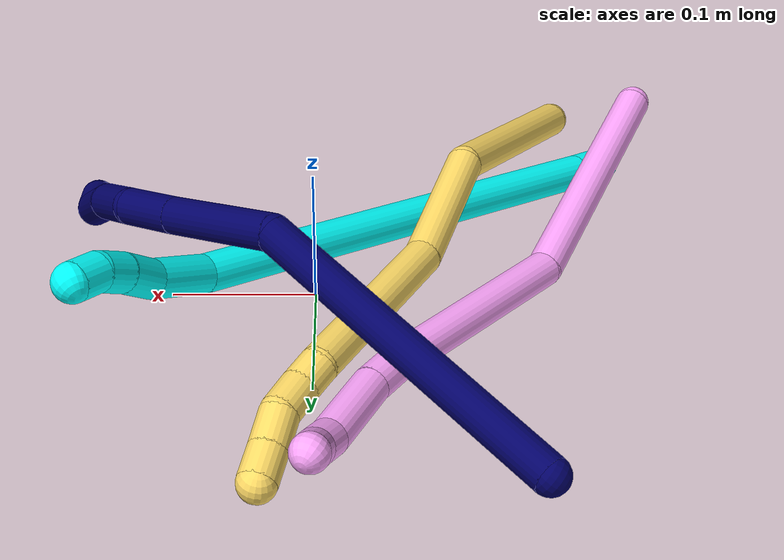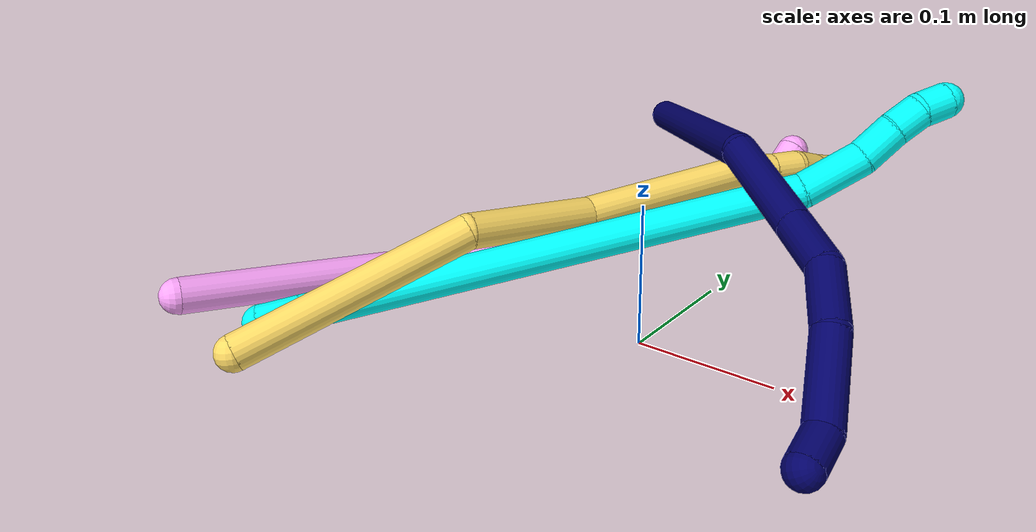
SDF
<sdf version="1.7">
 <world name="default">
  <model name="3">
   <static>0</static>
   <link name="3">
    <collision name="collision-cylinder-e_1_1_4">
     <pose>0.011645 0.00959 0.001448 -1.42089 0.876336 -0.766334</pose>
     <geometry><cylinder><radius>0.0125</radius><length>0.030309</length></cylinder></geometry>
     <surface>
      <friction><ode><mu>1.16</mu><mu2>1.16</mu2><slip1>0</slip1><slip2>0</slip2></ode></friction>
      <contact><ode><kp>1e+06</kp><kd>1</kd><max_vel>0</max_vel><min_depth>0.001</min_depth></ode></contact>
     </surface>
    </collision>
    <visual name="visual-cylinder-e_1_1_4">
     <pose>0.011645 0.00959 0.001448 -1.42089 0.876336 -0.766334</pose>
     <geometry><cylinder><radius>0.0125</radius><length>0.030309</length></cylinder></geometry>
     <material><ambient>0.003922 1 0.996078 1</ambient></material>
    </visual>
    <collision name="collision-cylinder-e_2_4_5">
     <pose>0.158544 0.130022 0.016573 -1.44804 0.880561 -0.789415</pose>
     <geometry><cylinder><radius>0.0125</radius><length>0.35081</length></cylinder></geometry>
     <surface>
      <friction><ode><mu>1.16</mu><mu2>1.16</mu2><slip1>0</slip1><slip2>0</slip2></ode></friction>
      <contact><ode><kp>1e+06</kp><kd>1</kd><max_vel>0</max_vel><min_depth>0.001</min_depth></ode></contact>
     </surface>
    </collision>
    <visual name="visual-cylinder-e_2_4_5">
     <pose>0.158544 0.130022 0.016573 -1.44804 0.880561 -0.789415</pose>
     <geometry><cylinder><radius>0.0125</radius><length>0.35081</length></cylinder></geometry>
     <material><ambient>0.003922 1 0.996078 1</ambient></material>
    </visual>
    <collision name="collision-cylinder-e_3_5_6">
     <pose>0.3152 0.250438 0.032529 -1.33688 1.13986 -0.937035</pose>
     <geometry><cylinder><radius>0.0125</radius><length>0.047113</length></cylinder></geometry>
     <surface>
      <friction><ode><mu>1.16</mu><mu2>1.16</mu2><slip1>0</slip1><slip2>0</slip2></ode></friction>
      <contact><ode><kp>1e+06</kp><kd>1</kd><max_vel>0</max_vel><min_depth>0.001</min_depth></ode></contact>
     </surface>
    </collision>
    <visual name="visual-cylinder-e_3_5_6">
     <pose>0.3152 0.250438 0.032529 -1.33688 1.13986 -0.937035</pose>
     <geometry><cylinder><radius>0.0125</radius><length>0.047113</length></cylinder></geometry>
     <material><ambient>0.003922 1 0.996078 1</ambient></material>
    </visual>
    <collision name="collision-cylinder-e_4_6_7">
     <pose>0.350658 0.262679 0.035259 -1.40438 1.38051 -1.21961</pose>
     <geometry><cylinder><radius>0.0125</radius><length>0.028625</length></cylinder></geometry>
     <surface>
      <friction><ode><mu>1.16</mu><mu2>1.16</mu2><slip1>0</slip1><slip2>0</slip2></ode></friction>
      <contact><ode><kp>1e+06</kp><kd>1</kd><max_vel>0</max_vel><min_depth>0.001</min_depth></ode></contact>
     </surface>
    </collision>
    <visual name="visual-cylinder-e_4_6_7">
     <pose>0.350658 0.262679 0.035259 -1.40438 1.38051 -1.21961</pose>
     <geometry><cylinder><radius>0.0125</radius><length>0.028625</length></cylinder></geometry>
     <material><ambient>0.003922 1 0.996078 1</ambient></material>
    </visual>
    <collision name="collision-cylinder-e_5_7_8">
     <pose>0.375276 0.268495 0.036685 -1.26947 1.26848 -0.992909</pose>
     <geometry><cylinder><radius>0.0125</radius><length>0.022131</length></cylinder></geometry>
     <surface>
      <friction><ode><mu>1.16</mu><mu2>1.16</mu2><slip1>0</slip1><slip2>0</slip2></ode></friction>
      <contact><ode><kp>1e+06</kp><kd>1</kd><max_vel>0</max_vel><min_depth>0.001</min_depth></ode></contact>
     </surface>
    </collision>
    <visual name="visual-cylinder-e_5_7_8">
     <pose>0.375276 0.268495 0.036685 -1.26947 1.26848 -0.992909</pose>
     <geometry><cylinder><radius>0.0125</radius><length>0.022131</length></cylinder></geometry>
     <material><ambient>0.003922 1 0.996078 1</ambient></material>
    </visual>
    <collision name="collision-cylinder-e_6_8_2">
     <pose>0.394402 0.276995 0.04056 -1.07482 0.952763 -0.596652</pose>
     <geometry><cylinder><radius>0.0125</radius><length>0.021011</length></cylinder></geometry>
     <surface>
      <friction><ode><mu>1.16</mu><mu2>1.16</mu2><slip1>0</slip1><slip2>0</slip2></ode></friction>
      <contact><ode><kp>1e+06</kp><kd>1</kd><max_vel>0</max_vel><min_depth>0.001</min_depth></ode></contact>
     </surface>
    </collision>
    <visual name="visual-cylinder-e_6_8_2">
     <pose>0.394402 0.276995 0.04056 -1.07482 0.952763 -0.596652</pose>
     <geometry><cylinder><radius>0.0125</radius><length>0.021011</length></cylinder></geometry>
     <material><ambient>0.003922 1 0.996078 1</ambient></material>
    </visual>
    <collision name="collision-sphere-2">
     <pose>0.402964 0.282349 0.043457 0 -0 0</pose>
     <geometry><sphere><radius>0.0125</radius></sphere></geometry>
     <surface>
      <friction><ode><mu>1.16</mu><mu2>1.16</mu2><slip1>0</slip1><slip2>0</slip2></ode></friction>
      <contact><ode><kp>1e+06</kp><kd>1</kd><max_vel>0</max_vel><min_depth>0.001</min_depth></ode></contact>
     </surface>
    </collision>
    <visual name="visual-sphere-2">
     <pose>0.402964 0.282349 0.043457 0 -0 0</pose>
     <geometry><sphere><radius>0.0125</radius></sphere></geometry>
     <material><ambient>0.003922 1 0.996078 1</ambient></material>
    </visual>
    <collision name="collision-sphere-4">
     <pose>0.023289 0.019179 0.002897 0 -0 0</pose>
     <geometry><sphere><radius>0.0125</radius></sphere></geometry>
     <surface>
      <friction><ode><mu>1.16</mu><mu2>1.16</mu2><slip1>0</slip1><slip2>0</slip2></ode></friction>
      <contact><ode><kp>1e+06</kp><kd>1</kd><max_vel>0</max_vel><min_depth>0.001</min_depth></ode></contact>
     </surface>
    </collision>
    <visual name="visual-sphere-4">
     <pose>0.023289 0.019179 0.002897 0 -0 0</pose>
     <geometry><sphere><radius>0.0125</radius></sphere></geometry>
     <material><ambient>0.003922 1 0.996078 1</ambient></material>
    </visual>
    <collision name="collision-sphere-1">
     <geometry><sphere><radius>0.0125</radius></sphere></geometry>
     <surface>
      <friction><ode><mu>1.16</mu><mu2>1.16</mu2><slip1>0</slip1><slip2>0</slip2></ode></friction>
      <contact><ode><kp>1e+06</kp><kd>1</kd><max_vel>0</max_vel><min_depth>0.001</min_depth></ode></contact>
     </surface>
    </collision>
    <visual name="visual-sphere-1">
     <geometry><sphere><radius>0.0125</radius></sphere></geometry>
     <material><ambient>0.003922 1 0.996078 1</ambient></material>
    </visual>
    <collision name="collision-sphere-8">
     <pose>0.38584 0.271642 0.037663 0 -0 0</pose>
     <geometry><sphere><radius>0.0125</radius></sphere></geometry>
     <surface>
      <friction><ode><mu>1.16</mu><mu2>1.16</mu2><slip1>0</slip1><slip2>0</slip2></ode></friction>
      <contact><ode><kp>1e+06</kp><kd>1</kd><max_vel>0</max_vel><min_depth>0.001</min_depth></ode></contact>
     </surface>
    </collision>
    <visual name="visual-sphere-8">
     <pose>0.38584 0.271642 0.037663 0 -0 0</pose>
     <geometry><sphere><radius>0.0125</radius></sphere></geometry>
     <material><ambient>0.003922 1 0.996078 1</ambient></material>
    </visual>
    <collision name="collision-sphere-5">
     <pose>0.293798 0.240866 0.030248 0 -0 0</pose>
     <geometry><sphere><radius>0.0125</radius></sphere></geometry>
     <surface>
      <friction><ode><mu>1.16</mu><mu2>1.16</mu2><slip1>0</slip1><slip2>0</slip2></ode></friction>
      <contact><ode><kp>1e+06</kp><kd>1</kd><max_vel>0</max_vel><min_depth>0.001</min_depth></ode></contact>
     </surface>
    </collision>
    <visual name="visual-sphere-5">
     <pose>0.293798 0.240866 0.030248 0 -0 0</pose>
     <geometry><sphere><radius>0.0125</radius></sphere></geometry>
     <material><ambient>0.003922 1 0.996078 1</ambient></material>
    </visual>
    <collision name="collision-sphere-6">
     <pose>0.336603 0.26001 0.03481 0 -0 0</pose>
     <geometry><sphere><radius>0.0125</radius></sphere></geometry>
     <surface>
      <friction><ode><mu>1.16</mu><mu2>1.16</mu2><slip1>0</slip1><slip2>0</slip2></ode></friction>
      <contact><ode><kp>1e+06</kp><kd>1</kd><max_vel>0</max_vel><min_depth>0.001</min_depth></ode></contact>
     </surface>
    </collision>
    <visual name="visual-sphere-6">
     <pose>0.336603 0.26001 0.03481 0 -0 0</pose>
     <geometry><sphere><radius>0.0125</radius></sphere></geometry>
     <material><ambient>0.003922 1 0.996078 1</ambient></material>
    </visual>
    <collision name="collision-sphere-7">
     <pose>0.364712 0.265349 0.035707 0 -0 0</pose>
     <geometry><sphere><radius>0.0125</radius></sphere></geometry>
     <surface>
      <friction><ode><mu>1.16</mu><mu2>1.16</mu2><slip1>0</slip1><slip2>0</slip2></ode></friction>
      <contact><ode><kp>1e+06</kp><kd>1</kd><max_vel>0</max_vel><min_depth>0.001</min_depth></ode></contact>
     </surface>
    </collision>
    <visual name="visual-sphere-7">
     <pose>0.364712 0.265349 0.035707 0 -0 0</pose>
     <geometry><sphere><radius>0.0125</radius></sphere></geometry>
     <material><ambient>0.003922 1 0.996078 1</ambient></material>
    </visual>
    <inertial>
     <pose>0.194903 0.153968 0.020127 0 -0 0</pose>
     <mass>0.5</mass>
     <inertia>
      <ixx>1.7e-05</ixx>
      <ixy>0</ixy>
      <ixz>0</ixz>
      <iyy>0.000674</iyy>
      <iyz>0</iyz>
      <izz>-0.00509</izz>
     </inertia>
    </inertial>
   </link>
   <pose>-0.214043 -0.146354 0.011493 -2.15163 -0.86842 1.01089</pose>
  </model>
  <model name="4">
   <static>0</static>
   <link name="4">
    <collision name="collision-cylinder-e_1_1_4">
     <pose>0.000107 -5.3e-05 0.101879 0.000516 0.001049 0</pose>
     <geometry><cylinder><radius>0.0125</radius><length>0.203758</length></cylinder></geometry>
     <surface>
      <friction><ode><mu>1.16</mu><mu2>1.16</mu2><slip1>0</slip1><slip2>0</slip2></ode></friction>
      <contact><ode><kp>1e+06</kp><kd>1</kd><max_vel>0</max_vel><min_depth>0.001</min_depth></ode></contact>
     </surface>
    </collision>
    <visual name="visual-cylinder-e_1_1_4">
     <pose>0.000107 -5.3e-05 0.101879 0.000516 0.001049 0</pose>
     <geometry><cylinder><radius>0.0125</radius><length>0.203758</length></cylinder></geometry>
     <material><ambient>1 0.65098 0.996078 1</ambient></material>
    </visual>
    <collision name="collision-cylinder-e_2_4_5">
     <pose>-0.025573 0.011509 0.279934 -0.151299 -0.322929 0.02469</pose>
     <geometry><cylinder><radius>0.0125</radius><length>0.162515</length></cylinder></geometry>
     <surface>
      <friction><ode><mu>1.16</mu><mu2>1.16</mu2><slip1>0</slip1><slip2>0</slip2></ode></friction>
      <contact><ode><kp>1e+06</kp><kd>1</kd><max_vel>0</max_vel><min_depth>0.001</min_depth></ode></contact>
     </surface>
    </collision>
    <visual name="visual-cylinder-e_2_4_5">
     <pose>-0.025573 0.011509 0.279934 -0.151299 -0.322929 0.02469</pose>
     <geometry><cylinder><radius>0.0125</radius><length>0.162515</length></cylinder></geometry>
     <material><ambient>1 0.65098 0.996078 1</ambient></material>
    </visual>
    <collision name="collision-cylinder-e_3_5_6">
     <pose>-0.054468 0.02584 0.371539 -0.174282 -0.195871 0.017166</pose>
     <geometry><cylinder><radius>0.0125</radius><length>0.031942</length></cylinder></geometry>
     <surface>
      <friction><ode><mu>1.16</mu><mu2>1.16</mu2><slip1>0</slip1><slip2>0</slip2></ode></friction>
      <contact><ode><kp>1e+06</kp><kd>1</kd><max_vel>0</max_vel><min_depth>0.001</min_depth></ode></contact>
     </surface>
    </collision>
    <visual name="visual-cylinder-e_3_5_6">
     <pose>-0.054468 0.02584 0.371539 -0.174282 -0.195871 0.017166</pose>
     <geometry><cylinder><radius>0.0125</radius><length>0.031942</length></cylinder></geometry>
     <material><ambient>1 0.65098 0.996078 1</ambient></material>
    </visual>
    <collision name="collision-cylinder-e_4_6_7">
     <pose>-0.059524 0.034026 0.415941 -0.186589 -0.06597 0.006175</pose>
     <geometry><cylinder><radius>0.0125</radius><length>0.059099</length></cylinder></geometry>
     <surface>
      <friction><ode><mu>1.16</mu><mu2>1.16</mu2><slip1>0</slip1><slip2>0</slip2></ode></friction>
      <contact><ode><kp>1e+06</kp><kd>1</kd><max_vel>0</max_vel><min_depth>0.001</min_depth></ode></contact>
     </surface>
    </collision>
    <visual name="visual-cylinder-e_4_6_7">
     <pose>-0.059524 0.034026 0.415941 -0.186589 -0.06597 0.006175</pose>
     <geometry><cylinder><radius>0.0125</radius><length>0.059099</length></cylinder></geometry>
     <material><ambient>1 0.65098 0.996078 1</ambient></material>
    </visual>
    <collision name="collision-cylinder-e_5_7_8">
     <pose>-0.062624 0.044574 0.454369 -0.492894 -0.106948 0.026928</pose>
     <geometry><cylinder><radius>0.0125</radius><length>0.021586</length></cylinder></geometry>
     <surface>
      <friction><ode><mu>1.16</mu><mu2>1.16</mu2><slip1>0</slip1><slip2>0</slip2></ode></friction>
      <contact><ode><kp>1e+06</kp><kd>1</kd><max_vel>0</max_vel><min_depth>0.001</min_depth></ode></contact>
     </surface>
    </collision>
    <visual name="visual-cylinder-e_5_7_8">
     <pose>-0.062624 0.044574 0.454369 -0.492894 -0.106948 0.026928</pose>
     <geometry><cylinder><radius>0.0125</radius><length>0.021586</length></cylinder></geometry>
     <material><ambient>1 0.65098 0.996078 1</ambient></material>
    </visual>
    <collision name="collision-cylinder-e_6_8_2">
     <pose>-0.063136 0.057011 0.471355 -0.773775 0.060735 -0.024751</pose>
     <geometry><cylinder><radius>0.0125</radius><length>0.021101</length></cylinder></geometry>
     <surface>
      <friction><ode><mu>1.16</mu><mu2>1.16</mu2><slip1>0</slip1><slip2>0</slip2></ode></friction>
      <contact><ode><kp>1e+06</kp><kd>1</kd><max_vel>0</max_vel><min_depth>0.001</min_depth></ode></contact>
     </surface>
    </collision>
    <visual name="visual-cylinder-e_6_8_2">
     <pose>-0.063136 0.057011 0.471355 -0.773775 0.060735 -0.024751</pose>
     <geometry><cylinder><radius>0.0125</radius><length>0.021101</length></cylinder></geometry>
     <material><ambient>1 0.65098 0.996078 1</ambient></material>
    </visual>
    <collision name="collision-sphere-2">
     <pose>-0.062496 0.06437 0.478888 0 -0 0</pose>
     <geometry><sphere><radius>0.0125</radius></sphere></geometry>
     <surface>
      <friction><ode><mu>1.16</mu><mu2>1.16</mu2><slip1>0</slip1><slip2>0</slip2></ode></friction>
      <contact><ode><kp>1e+06</kp><kd>1</kd><max_vel>0</max_vel><min_depth>0.001</min_depth></ode></contact>
     </surface>
    </collision>
    <visual name="visual-sphere-2">
     <pose>-0.062496 0.06437 0.478888 0 -0 0</pose>
     <geometry><sphere><radius>0.0125</radius></sphere></geometry>
     <material><ambient>1 0.65098 0.996078 1</ambient></material>
    </visual>
    <collision name="collision-sphere-4">
     <pose>0.000214 -0.000105 0.203757 0 -0 0</pose>
     <geometry><sphere><radius>0.0125</radius></sphere></geometry>
     <surface>
      <friction><ode><mu>1.16</mu><mu2>1.16</mu2><slip1>0</slip1><slip2>0</slip2></ode></friction>
      <contact><ode><kp>1e+06</kp><kd>1</kd><max_vel>0</max_vel><min_depth>0.001</min_depth></ode></contact>
     </surface>
    </collision>
    <visual name="visual-sphere-4">
     <pose>0.000214 -0.000105 0.203757 0 -0 0</pose>
     <geometry><sphere><radius>0.0125</radius></sphere></geometry>
     <material><ambient>1 0.65098 0.996078 1</ambient></material>
    </visual>
    <collision name="collision-sphere-1">
     <geometry><sphere><radius>0.0125</radius></sphere></geometry>
     <surface>
      <friction><ode><mu>1.16</mu><mu2>1.16</mu2><slip1>0</slip1><slip2>0</slip2></ode></friction>
      <contact><ode><kp>1e+06</kp><kd>1</kd><max_vel>0</max_vel><min_depth>0.001</min_depth></ode></contact>
     </surface>
    </collision>
    <visual name="visual-sphere-1">
     <geometry><sphere><radius>0.0125</radius></sphere></geometry>
     <material><ambient>1 0.65098 0.996078 1</ambient></material>
    </visual>
    <collision name="collision-sphere-8">
     <pose>-0.063776 0.049651 0.463823 0 -0 0</pose>
     <geometry><sphere><radius>0.0125</radius></sphere></geometry>
     <surface>
      <friction><ode><mu>1.16</mu><mu2>1.16</mu2><slip1>0</slip1><slip2>0</slip2></ode></friction>
      <contact><ode><kp>1e+06</kp><kd>1</kd><max_vel>0</max_vel><min_depth>0.001</min_depth></ode></contact>
     </surface>
    </collision>
    <visual name="visual-sphere-8">
     <pose>-0.063776 0.049651 0.463823 0 -0 0</pose>
     <geometry><sphere><radius>0.0125</radius></sphere></geometry>
     <material><ambient>1 0.65098 0.996078 1</ambient></material>
    </visual>
    <collision name="collision-sphere-5">
     <pose>-0.05136 0.023123 0.356111 0 -0 0</pose>
     <geometry><sphere><radius>0.0125</radius></sphere></geometry>
     <surface>
      <friction><ode><mu>1.16</mu><mu2>1.16</mu2><slip1>0</slip1><slip2>0</slip2></ode></friction>
      <contact><ode><kp>1e+06</kp><kd>1</kd><max_vel>0</max_vel><min_depth>0.001</min_depth></ode></contact>
     </surface>
    </collision>
    <visual name="visual-sphere-5">
     <pose>-0.05136 0.023123 0.356111 0 -0 0</pose>
     <geometry><sphere><radius>0.0125</radius></sphere></geometry>
     <material><ambient>1 0.65098 0.996078 1</ambient></material>
    </visual>
    <collision name="collision-sphere-6">
     <pose>-0.057576 0.028556 0.386968 0 -0 0</pose>
     <geometry><sphere><radius>0.0125</radius></sphere></geometry>
     <surface>
      <friction><ode><mu>1.16</mu><mu2>1.16</mu2><slip1>0</slip1><slip2>0</slip2></ode></friction>
      <contact><ode><kp>1e+06</kp><kd>1</kd><max_vel>0</max_vel><min_depth>0.001</min_depth></ode></contact>
     </surface>
    </collision>
    <visual name="visual-sphere-6">
     <pose>-0.057576 0.028556 0.386968 0 -0 0</pose>
     <geometry><sphere><radius>0.0125</radius></sphere></geometry>
     <material><ambient>1 0.65098 0.996078 1</ambient></material>
    </visual>
    <collision name="collision-sphere-7">
     <pose>-0.061472 0.039496 0.444915 0 -0 0</pose>
     <geometry><sphere><radius>0.0125</radius></sphere></geometry>
     <surface>
      <friction><ode><mu>1.16</mu><mu2>1.16</mu2><slip1>0</slip1><slip2>0</slip2></ode></friction>
      <contact><ode><kp>1e+06</kp><kd>1</kd><max_vel>0</max_vel><min_depth>0.001</min_depth></ode></contact>
     </surface>
    </collision>
    <visual name="visual-sphere-7">
     <pose>-0.061472 0.039496 0.444915 0 -0 0</pose>
     <geometry><sphere><radius>0.0125</radius></sphere></geometry>
     <material><ambient>1 0.65098 0.996078 1</ambient></material>
    </visual>
    <inertial>
     <pose>-0.024152 0.013722 0.244911 0 -0 0</pose>
     <mass>0.5</mass>
     <inertia>
      <ixx>0.001088</ixx>
      <ixy>0</ixy>
      <ixz>0</ixz>
      <iyy>0.001113</iyy>
      <iyz>0</iyz>
      <izz>9.6e-05</izz>
     </inertia>
    </inertial>
   </link>
   <pose>-0.240749 -0.187995 0.040464 1.6669 0.254583 2.74761</pose>
  </model>
  <model name="5">
   <static>0</static>
   <link name="5">
    <collision name="collision-cylinder-e_1_1_4">
     <pose>0.036623 0.071599 0.024315 -1.24341 0.451042 -0.325845</pose>
     <geometry><cylinder><radius>0.0125</radius><length>0.168034</length></cylinder></geometry>
     <surface>
      <friction><ode><mu>1.16</mu><mu2>1.16</mu2><slip1>0</slip1><slip2>0</slip2></ode></friction>
      <contact><ode><kp>1e+06</kp><kd>1</kd><max_vel>0</max_vel><min_depth>0.001</min_depth></ode></contact>
     </surface>
    </collision>
    <visual name="visual-cylinder-e_1_1_4">
     <pose>0.036623 0.071599 0.024315 -1.24341 0.451042 -0.325845</pose>
     <geometry><cylinder><radius>0.0125</radius><length>0.168034</length></cylinder></geometry>
     <material><ambient>1 0.858824 0.4 1</ambient></material>
    </visual>
    <collision name="collision-cylinder-e_2_4_5">
     <pose>0.084888 0.191488 0.043478 -1.6771 0.235265 -0.261418</pose>
     <geometry><cylinder><radius>0.0125</radius><length>0.09988</length></cylinder></geometry>
     <surface>
      <friction><ode><mu>1.16</mu><mu2>1.16</mu2><slip1>0</slip1><slip2>0</slip2></ode></friction>
      <contact><ode><kp>1e+06</kp><kd>1</kd><max_vel>0</max_vel><min_depth>0.001</min_depth></ode></contact>
     </surface>
    </collision>
    <visual name="visual-cylinder-e_2_4_5">
     <pose>0.084888 0.191488 0.043478 -1.6771 0.235265 -0.261418</pose>
     <geometry><cylinder><radius>0.0125</radius><length>0.09988</length></cylinder></geometry>
     <material><ambient>1 0.858824 0.4 1</ambient></material>
    </visual>
    <collision name="collision-cylinder-e_3_5_6">
     <pose>0.125658 0.30341 0.042674 -1.50255 0.428418 -0.400912</pose>
     <geometry><cylinder><radius>0.0125</radius><length>0.140236</length></cylinder></geometry>
     <surface>
      <friction><ode><mu>1.16</mu><mu2>1.16</mu2><slip1>0</slip1><slip2>0</slip2></ode></friction>
      <contact><ode><kp>1e+06</kp><kd>1</kd><max_vel>0</max_vel><min_depth>0.001</min_depth></ode></contact>
     </surface>
    </collision>
    <visual name="visual-cylinder-e_3_5_6">
     <pose>0.125658 0.30341 0.042674 -1.50255 0.428418 -0.400912</pose>
     <geometry><cylinder><radius>0.0125</radius><length>0.140236</length></cylinder></geometry>
     <material><ambient>1 0.858824 0.4 1</ambient></material>
    </visual>
    <collision name="collision-cylinder-e_4_6_7">
     <pose>0.159384 0.375808 0.045198 -1.77619 0.474337 -0.577894</pose>
     <geometry><cylinder><radius>0.0125</radius><length>0.020129</length></cylinder></geometry>
     <surface>
      <friction><ode><mu>1.16</mu><mu2>1.16</mu2><slip1>0</slip1><slip2>0</slip2></ode></friction>
      <contact><ode><kp>1e+06</kp><kd>1</kd><max_vel>0</max_vel><min_depth>0.001</min_depth></ode></contact>
     </surface>
    </collision>
    <visual name="visual-cylinder-e_4_6_7">
     <pose>0.159384 0.375808 0.045198 -1.77619 0.474337 -0.577894</pose>
     <geometry><cylinder><radius>0.0125</radius><length>0.020129</length></cylinder></geometry>
     <material><ambient>1 0.858824 0.4 1</ambient></material>
    </visual>
    <collision name="collision-cylinder-e_5_7_8">
     <pose>0.168726 0.395805 0.04262 -1.63764 0.398876 -0.425672</pose>
     <geometry><cylinder><radius>0.0125</radius><length>0.024432</length></cylinder></geometry>
     <surface>
      <friction><ode><mu>1.16</mu><mu2>1.16</mu2><slip1>0</slip1><slip2>0</slip2></ode></friction>
      <contact><ode><kp>1e+06</kp><kd>1</kd><max_vel>0</max_vel><min_depth>0.001</min_depth></ode></contact>
     </surface>
    </collision>
    <visual name="visual-cylinder-e_5_7_8">
     <pose>0.168726 0.395805 0.04262 -1.63764 0.398876 -0.425672</pose>
     <geometry><cylinder><radius>0.0125</radius><length>0.024432</length></cylinder></geometry>
     <material><ambient>1 0.858824 0.4 1</ambient></material>
    </visual>
    <collision name="collision-cylinder-e_6_8_9">
     <pose>0.175095 0.418748 0.038152 -1.87804 0.131475 -0.179428</pose>
     <geometry><cylinder><radius>0.0125</radius><length>0.024787</length></cylinder></geometry>
     <surface>
      <friction><ode><mu>1.16</mu><mu2>1.16</mu2><slip1>0</slip1><slip2>0</slip2></ode></friction>
      <contact><ode><kp>1e+06</kp><kd>1</kd><max_vel>0</max_vel><min_depth>0.001</min_depth></ode></contact>
     </surface>
    </collision>
    <visual name="visual-cylinder-e_6_8_9">
     <pose>0.175095 0.418748 0.038152 -1.87804 0.131475 -0.179428</pose>
     <geometry><cylinder><radius>0.0125</radius><length>0.024787</length></cylinder></geometry>
     <material><ambient>1 0.858824 0.4 1</ambient></material>
    </visual>
    <collision name="collision-cylinder-e_7_9_2">
     <pose>0.178341 0.441228 0.031611 -1.8273 0.144636 -0.187242</pose>
     <geometry><cylinder><radius>0.0125</radius><length>0.022502</length></cylinder></geometry>
     <surface>
      <friction><ode><mu>1.16</mu><mu2>1.16</mu2><slip1>0</slip1><slip2>0</slip2></ode></friction>
      <contact><ode><kp>1e+06</kp><kd>1</kd><max_vel>0</max_vel><min_depth>0.001</min_depth></ode></contact>
     </surface>
    </collision>
    <visual name="visual-cylinder-e_7_9_2">
     <pose>0.178341 0.441228 0.031611 -1.8273 0.144636 -0.187242</pose>
     <geometry><cylinder><radius>0.0125</radius><length>0.022502</length></cylinder></geometry>
     <material><ambient>1 0.858824 0.4 1</ambient></material>
    </visual>
    <collision name="collision-sphere-2">
     <pose>0.179963 0.451998 0.028787 0 -0 0</pose>
     <geometry><sphere><radius>0.0125</radius></sphere></geometry>
     <surface>
      <friction><ode><mu>1.16</mu><mu2>1.16</mu2><slip1>0</slip1><slip2>0</slip2></ode></friction>
      <contact><ode><kp>1e+06</kp><kd>1</kd><max_vel>0</max_vel><min_depth>0.001</min_depth></ode></contact>
     </surface>
    </collision>
    <visual name="visual-sphere-2">
     <pose>0.179963 0.451998 0.028787 0 -0 0</pose>
     <geometry><sphere><radius>0.0125</radius></sphere></geometry>
     <material><ambient>1 0.858824 0.4 1</ambient></material>
    </visual>
    <collision name="collision-sphere-9">
     <pose>0.17672 0.430459 0.034436 0 -0 0</pose>
     <geometry><sphere><radius>0.0125</radius></sphere></geometry>
     <surface>
      <friction><ode><mu>1.16</mu><mu2>1.16</mu2><slip1>0</slip1><slip2>0</slip2></ode></friction>
      <contact><ode><kp>1e+06</kp><kd>1</kd><max_vel>0</max_vel><min_depth>0.001</min_depth></ode></contact>
     </surface>
    </collision>
    <visual name="visual-sphere-9">
     <pose>0.17672 0.430459 0.034436 0 -0 0</pose>
     <geometry><sphere><radius>0.0125</radius></sphere></geometry>
     <material><ambient>1 0.858824 0.4 1</ambient></material>
    </visual>
    <collision name="collision-sphere-4">
     <pose>0.073247 0.143198 0.04863 0 -0 0</pose>
     <geometry><sphere><radius>0.0125</radius></sphere></geometry>
     <surface>
      <friction><ode><mu>1.16</mu><mu2>1.16</mu2><slip1>0</slip1><slip2>0</slip2></ode></friction>
      <contact><ode><kp>1e+06</kp><kd>1</kd><max_vel>0</max_vel><min_depth>0.001</min_depth></ode></contact>
     </surface>
    </collision>
    <visual name="visual-sphere-4">
     <pose>0.073247 0.143198 0.04863 0 -0 0</pose>
     <geometry><sphere><radius>0.0125</radius></sphere></geometry>
     <material><ambient>1 0.858824 0.4 1</ambient></material>
    </visual>
    <collision name="collision-sphere-1">
     <geometry><sphere><radius>0.0125</radius></sphere></geometry>
     <surface>
      <friction><ode><mu>1.16</mu><mu2>1.16</mu2><slip1>0</slip1><slip2>0</slip2></ode></friction>
      <contact><ode><kp>1e+06</kp><kd>1</kd><max_vel>0</max_vel><min_depth>0.001</min_depth></ode></contact>
     </surface>
    </collision>
    <visual name="visual-sphere-1">
     <geometry><sphere><radius>0.0125</radius></sphere></geometry>
     <material><ambient>1 0.858824 0.4 1</ambient></material>
    </visual>
    <collision name="collision-sphere-8">
     <pose>0.17347 0.407036 0.041868 0 -0 0</pose>
     <geometry><sphere><radius>0.0125</radius></sphere></geometry>
     <surface>
      <friction><ode><mu>1.16</mu><mu2>1.16</mu2><slip1>0</slip1><slip2>0</slip2></ode></friction>
      <contact><ode><kp>1e+06</kp><kd>1</kd><max_vel>0</max_vel><min_depth>0.001</min_depth></ode></contact>
     </surface>
    </collision>
    <visual name="visual-sphere-8">
     <pose>0.17347 0.407036 0.041868 0 -0 0</pose>
     <geometry><sphere><radius>0.0125</radius></sphere></geometry>
     <material><ambient>1 0.858824 0.4 1</ambient></material>
    </visual>
    <collision name="collision-sphere-5">
     <pose>0.096529 0.239778 0.038325 0 -0 0</pose>
     <geometry><sphere><radius>0.0125</radius></sphere></geometry>
     <surface>
      <friction><ode><mu>1.16</mu><mu2>1.16</mu2><slip1>0</slip1><slip2>0</slip2></ode></friction>
      <contact><ode><kp>1e+06</kp><kd>1</kd><max_vel>0</max_vel><min_depth>0.001</min_depth></ode></contact>
     </surface>
    </collision>
    <visual name="visual-sphere-5">
     <pose>0.096529 0.239778 0.038325 0 -0 0</pose>
     <geometry><sphere><radius>0.0125</radius></sphere></geometry>
     <material><ambient>1 0.858824 0.4 1</ambient></material>
    </visual>
    <collision name="collision-sphere-6">
     <pose>0.154787 0.367043 0.047024 0 -0 0</pose>
     <geometry><sphere><radius>0.0125</radius></sphere></geometry>
     <surface>
      <friction><ode><mu>1.16</mu><mu2>1.16</mu2><slip1>0</slip1><slip2>0</slip2></ode></friction>
      <contact><ode><kp>1e+06</kp><kd>1</kd><max_vel>0</max_vel><min_depth>0.001</min_depth></ode></contact>
     </surface>
    </collision>
    <visual name="visual-sphere-6">
     <pose>0.154787 0.367043 0.047024 0 -0 0</pose>
     <geometry><sphere><radius>0.0125</radius></sphere></geometry>
     <material><ambient>1 0.858824 0.4 1</ambient></material>
    </visual>
    <collision name="collision-sphere-7">
     <pose>0.163981 0.384573 0.043372 0 -0 0</pose>
     <geometry><sphere><radius>0.0125</radius></sphere></geometry>
     <surface>
      <friction><ode><mu>1.16</mu><mu2>1.16</mu2><slip1>0</slip1><slip2>0</slip2></ode></friction>
      <contact><ode><kp>1e+06</kp><kd>1</kd><max_vel>0</max_vel><min_depth>0.001</min_depth></ode></contact>
     </surface>
    </collision>
    <visual name="visual-sphere-7">
     <pose>0.163981 0.384573 0.043372 0 -0 0</pose>
     <geometry><sphere><radius>0.0125</radius></sphere></geometry>
     <material><ambient>1 0.858824 0.4 1</ambient></material>
    </visual>
    <inertial>
     <pose>0.095876 0.222497 0.036042 0 -0 0</pose>
     <mass>0.5</mass>
     <inertia>
      <ixx>0.000419</ixx>
      <ixy>0</ixy>
      <ixz>0</ixz>
      <iyy>3.6e-05</iyy>
      <iyz>0</iyz>
      <izz>-0.00094</izz>
     </inertia>
    </inertial>
   </link>
   <pose>-0.178852 -0.194265 0.021093 -0.0379 -0.150519 -0.064577</pose>
  </model>
  <model name="7">
   <static>0</static>
   <link name="7">
    <collision name="collision-cylinder-e_1_1_4">
     <pose>0.046794 -0.052562 -0.095261 2.63739 0.406173 1.34882</pose>
     <geometry><cylinder><radius>0.0125</radius><length>0.236871</length></cylinder></geometry>
     <surface>
      <friction><ode><mu>1.16</mu><mu2>1.16</mu2><slip1>0</slip1><slip2>0</slip2></ode></friction>
      <contact><ode><kp>1e+06</kp><kd>1</kd><max_vel>0</max_vel><min_depth>0.001</min_depth></ode></contact>
     </surface>
    </collision>
    <visual name="visual-cylinder-e_1_1_4">
     <pose>0.046794 -0.052562 -0.095261 2.63739 0.406173 1.34882</pose>
     <geometry><cylinder><radius>0.0125</radius><length>0.236871</length></cylinder></geometry>
     <material><ambient>0.003922 0 0.403922 1</ambient></material>
    </visual>
    <collision name="collision-cylinder-e_2_4_5">
     <pose>0.099828 -0.139212 -0.216334 2.21892 0.144943 0.290031</pose>
     <geometry><cylinder><radius>0.0125</radius><length>0.086423</length></cylinder></geometry>
     <surface>
      <friction><ode><mu>1.16</mu><mu2>1.16</mu2><slip1>0</slip1><slip2>0</slip2></ode></friction>
      <contact><ode><kp>1e+06</kp><kd>1</kd><max_vel>0</max_vel><min_depth>0.001</min_depth></ode></contact>
     </surface>
    </collision>
    <visual name="visual-cylinder-e_2_4_5">
     <pose>0.099828 -0.139212 -0.216334 2.21892 0.144943 0.290031</pose>
     <geometry><cylinder><radius>0.0125</radius><length>0.086423</length></cylinder></geometry>
     <material><ambient>0.003922 0 0.403922 1</ambient></material>
    </visual>
    <collision name="collision-cylinder-e_3_5_6">
     <pose>0.109651 -0.18998 -0.255035 2.22865 0.168266 0.340149</pose>
     <geometry><cylinder><radius>0.0125</radius><length>0.042764</length></cylinder></geometry>
     <surface>
      <friction><ode><mu>1.16</mu><mu2>1.16</mu2><slip1>0</slip1><slip2>0</slip2></ode></friction>
      <contact><ode><kp>1e+06</kp><kd>1</kd><max_vel>0</max_vel><min_depth>0.001</min_depth></ode></contact>
     </surface>
    </collision>
    <visual name="visual-cylinder-e_3_5_6">
     <pose>0.109651 -0.18998 -0.255035 2.22865 0.168266 0.340149</pose>
     <geometry><cylinder><radius>0.0125</radius><length>0.042764</length></cylinder></geometry>
     <material><ambient>0.003922 0 0.403922 1</ambient></material>
    </visual>
    <collision name="collision-cylinder-e_4_6_7">
     <pose>0.122413 -0.226753 -0.274481 1.88624 0.409852 0.557978</pose>
     <geometry><cylinder><radius>0.0125</radius><length>0.046086</length></cylinder></geometry>
     <surface>
      <friction><ode><mu>1.16</mu><mu2>1.16</mu2><slip1>0</slip1><slip2>0</slip2></ode></friction>
      <contact><ode><kp>1e+06</kp><kd>1</kd><max_vel>0</max_vel><min_depth>0.001</min_depth></ode></contact>
     </surface>
    </collision>
    <visual name="visual-cylinder-e_4_6_7">
     <pose>0.122413 -0.226753 -0.274481 1.88624 0.409852 0.557978</pose>
     <geometry><cylinder><radius>0.0125</radius><length>0.046086</length></cylinder></geometry>
     <material><ambient>0.003922 0 0.403922 1</ambient></material>
    </visual>
    <collision name="collision-cylinder-e_5_7_8">
     <pose>0.14374 -0.274696 -0.282924 1.63842 0.410352 0.438203</pose>
     <geometry><cylinder><radius>0.0125</radius><length>0.060886</length></cylinder></geometry>
     <surface>
      <friction><ode><mu>1.16</mu><mu2>1.16</mu2><slip1>0</slip1><slip2>0</slip2></ode></friction>
      <contact><ode><kp>1e+06</kp><kd>1</kd><max_vel>0</max_vel><min_depth>0.001</min_depth></ode></contact>
     </surface>
    </collision>
    <visual name="visual-cylinder-e_5_7_8">
     <pose>0.14374 -0.274696 -0.282924 1.63842 0.410352 0.438203</pose>
     <geometry><cylinder><radius>0.0125</radius><length>0.060886</length></cylinder></geometry>
     <material><ambient>0.003922 0 0.403922 1</ambient></material>
    </visual>
    <collision name="collision-cylinder-e_6_8_2">
     <pose>0.166202 -0.311124 -0.286178 1.72897 0.871144 0.998756</pose>
     <geometry><cylinder><radius>0.0125</radius><length>0.02697</length></cylinder></geometry>
     <surface>
      <friction><ode><mu>1.16</mu><mu2>1.16</mu2><slip1>0</slip1><slip2>0</slip2></ode></friction>
      <contact><ode><kp>1e+06</kp><kd>1</kd><max_vel>0</max_vel><min_depth>0.001</min_depth></ode></contact>
     </surface>
    </collision>
    <visual name="visual-cylinder-e_6_8_2">
     <pose>0.166202 -0.311124 -0.286178 1.72897 0.871144 0.998756</pose>
     <geometry><cylinder><radius>0.0125</radius><length>0.02697</length></cylinder></geometry>
     <material><ambient>0.003922 0 0.403922 1</ambient></material>
    </visual>
    <collision name="collision-sphere-2">
     <pose>0.176519 -0.319699 -0.287546 0 -0 0</pose>
     <geometry><sphere><radius>0.0125</radius></sphere></geometry>
     <surface>
      <friction><ode><mu>1.16</mu><mu2>1.16</mu2><slip1>0</slip1><slip2>0</slip2></ode></friction>
      <contact><ode><kp>1e+06</kp><kd>1</kd><max_vel>0</max_vel><min_depth>0.001</min_depth></ode></contact>
     </surface>
    </collision>
    <visual name="visual-sphere-2">
     <pose>0.176519 -0.319699 -0.287546 0 -0 0</pose>
     <geometry><sphere><radius>0.0125</radius></sphere></geometry>
     <material><ambient>0.003922 0 0.403922 1</ambient></material>
    </visual>
    <collision name="collision-sphere-4">
     <pose>0.093587 -0.105124 -0.190521 0 -0 0</pose>
     <geometry><sphere><radius>0.0125</radius></sphere></geometry>
     <surface>
      <friction><ode><mu>1.16</mu><mu2>1.16</mu2><slip1>0</slip1><slip2>0</slip2></ode></friction>
      <contact><ode><kp>1e+06</kp><kd>1</kd><max_vel>0</max_vel><min_depth>0.001</min_depth></ode></contact>
     </surface>
    </collision>
    <visual name="visual-sphere-4">
     <pose>0.093587 -0.105124 -0.190521 0 -0 0</pose>
     <geometry><sphere><radius>0.0125</radius></sphere></geometry>
     <material><ambient>0.003922 0 0.403922 1</ambient></material>
    </visual>
    <collision name="collision-sphere-1">
     <geometry><sphere><radius>0.0125</radius></sphere></geometry>
     <surface>
      <friction><ode><mu>1.16</mu><mu2>1.16</mu2><slip1>0</slip1><slip2>0</slip2></ode></friction>
      <contact><ode><kp>1e+06</kp><kd>1</kd><max_vel>0</max_vel><min_depth>0.001</min_depth></ode></contact>
     </surface>
    </collision>
    <visual name="visual-sphere-1">
     <geometry><sphere><radius>0.0125</radius></sphere></geometry>
     <material><ambient>0.003922 0 0.403922 1</ambient></material>
    </visual>
    <collision name="collision-sphere-8">
     <pose>0.155885 -0.302548 -0.28481 0 -0 0</pose>
     <geometry><sphere><radius>0.0125</radius></sphere></geometry>
     <surface>
      <friction><ode><mu>1.16</mu><mu2>1.16</mu2><slip1>0</slip1><slip2>0</slip2></ode></friction>
      <contact><ode><kp>1e+06</kp><kd>1</kd><max_vel>0</max_vel><min_depth>0.001</min_depth></ode></contact>
     </surface>
    </collision>
    <visual name="visual-sphere-8">
     <pose>0.155885 -0.302548 -0.28481 0 -0 0</pose>
     <geometry><sphere><radius>0.0125</radius></sphere></geometry>
     <material><ambient>0.003922 0 0.403922 1</ambient></material>
    </visual>
    <collision name="collision-sphere-5">
     <pose>0.10607 -0.1733 -0.242147 0 -0 0</pose>
     <geometry><sphere><radius>0.0125</radius></sphere></geometry>
     <surface>
      <friction><ode><mu>1.16</mu><mu2>1.16</mu2><slip1>0</slip1><slip2>0</slip2></ode></friction>
      <contact><ode><kp>1e+06</kp><kd>1</kd><max_vel>0</max_vel><min_depth>0.001</min_depth></ode></contact>
     </surface>
    </collision>
    <visual name="visual-sphere-5">
     <pose>0.10607 -0.1733 -0.242147 0 -0 0</pose>
     <geometry><sphere><radius>0.0125</radius></sphere></geometry>
     <material><ambient>0.003922 0 0.403922 1</ambient></material>
    </visual>
    <collision name="collision-sphere-6">
     <pose>0.113231 -0.206661 -0.267924 0 -0 0</pose>
     <geometry><sphere><radius>0.0125</radius></sphere></geometry>
     <surface>
      <friction><ode><mu>1.16</mu><mu2>1.16</mu2><slip1>0</slip1><slip2>0</slip2></ode></friction>
      <contact><ode><kp>1e+06</kp><kd>1</kd><max_vel>0</max_vel><min_depth>0.001</min_depth></ode></contact>
     </surface>
    </collision>
    <visual name="visual-sphere-6">
     <pose>0.113231 -0.206661 -0.267924 0 -0 0</pose>
     <geometry><sphere><radius>0.0125</radius></sphere></geometry>
     <material><ambient>0.003922 0 0.403922 1</ambient></material>
    </visual>
    <collision name="collision-sphere-7">
     <pose>0.131595 -0.246844 -0.281037 0 -0 0</pose>
     <geometry><sphere><radius>0.0125</radius></sphere></geometry>
     <surface>
      <friction><ode><mu>1.16</mu><mu2>1.16</mu2><slip1>0</slip1><slip2>0</slip2></ode></friction>
      <contact><ode><kp>1e+06</kp><kd>1</kd><max_vel>0</max_vel><min_depth>0.001</min_depth></ode></contact>
     </surface>
    </collision>
    <visual name="visual-sphere-7">
     <pose>0.131595 -0.246844 -0.281037 0 -0 0</pose>
     <geometry><sphere><radius>0.0125</radius></sphere></geometry>
     <material><ambient>0.003922 0 0.403922 1</ambient></material>
    </visual>
    <inertial>
     <pose>0.086553 -0.136344 -0.179522 0 -0 0</pose>
     <mass>0.5</mass>
     <inertia>
      <ixx>0.001362</ixx>
      <ixy>0</ixy>
      <ixz>0</ixz>
      <iyy>0.000969</iyy>
      <iyz>0</iyz>
      <izz>8.9e-05</izz>
     </inertia>
    </inertial>
   </link>
   <pose>-0.137681 0.257151 0.075943 2.18391 -0.208084 -2.00405</pose>
  </model>
 </world>
</sdf>
